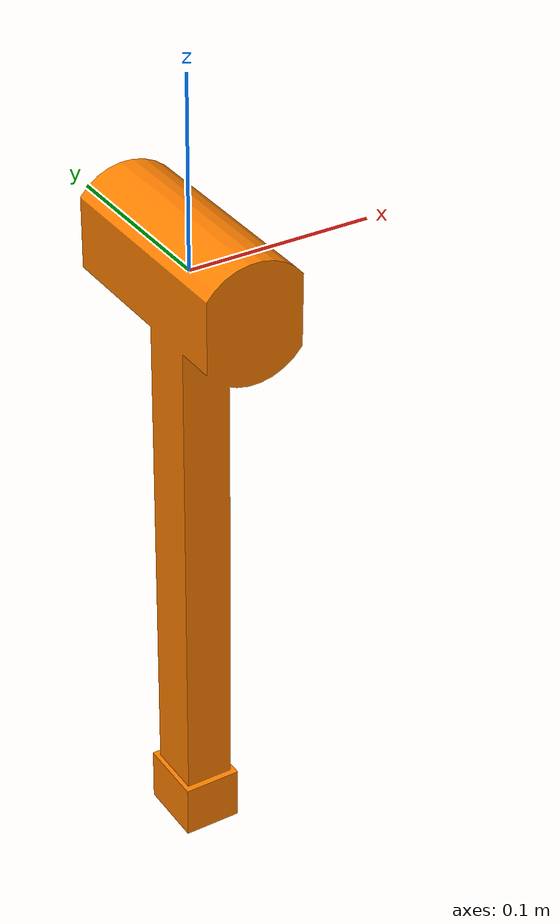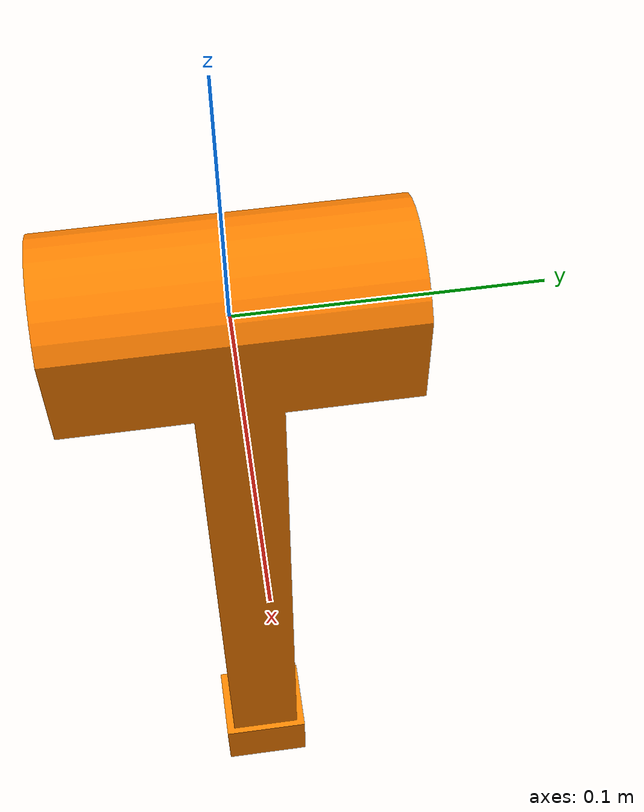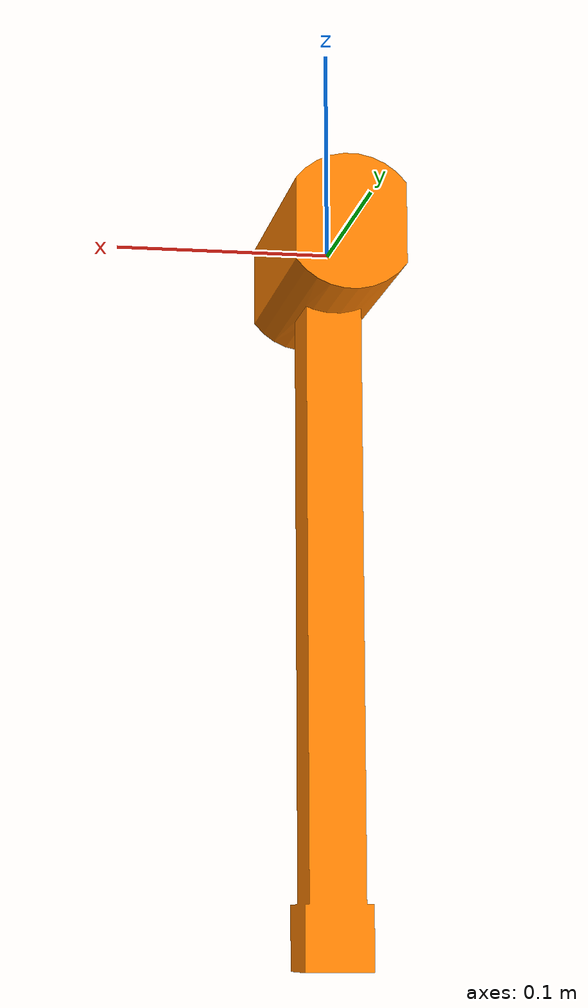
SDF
<?xml version="1.0" ?>
<!-- https://www.amazon.com.au/dp/B000REO0TQ?ref_=mr_referred_us_au_au&th=1 -->
<sdf version="1.7">
  <model name="mallet">
    <static>false</static>
    <link name="link">
      <inertial>
        <mass>1.36</mass>
        <inertia>
          <ixx>0.017670542003119606</ixx>
          <ixy>-1.6880057143163227e-08</ixy>
          <ixz>5.23434120494016e-21</ixz>
          <iyy>0.01691343657012847</iyy>
          <iyz>3.295826741253291e-19</iyz>
          <izz>0.0011246971086764758</izz>
        </inertia>
      </inertial>
      <collision name="collision">
        <geometry>
          <mesh>
            <scale>1 1 1</scale>
            <uri>model://urc_objects/mallet/mallet.stl</uri>
          </mesh>
        </geometry>
        <max_contacts>10</max_contacts>
          <surface>
            <contact>
              <ode/>
            </contact>
            <bounce/>
            <friction>
              <torsional>
                <ode/>
              </torsional>
              <ode/>
            </friction>
          </surface>
      </collision>
      <visual name="visual">
        <geometry>
          <mesh>
            <scale>1 1 1</scale>
            <uri>model://urc_objects/mallet/mallet.stl</uri>
          </mesh>
        </geometry>
        <material>
          <ambient>1.0 0.5 0.0 1.0</ambient> <!-- Orange ambient color -->
          <diffuse>1.0 0.5 0.0 1.0</diffuse> <!-- Orange diffuse color -->
          <specular>0.1 0.1 0.1 1.0</specular> <!-- Slight specular reflection -->
          <emissive>0.0 0.0 0.0 1.0</emissive> <!-- No glow -->
        </material>
      </visual>
      <self_collide>0</self_collide>
    </link>
  </model>
</sdf>
